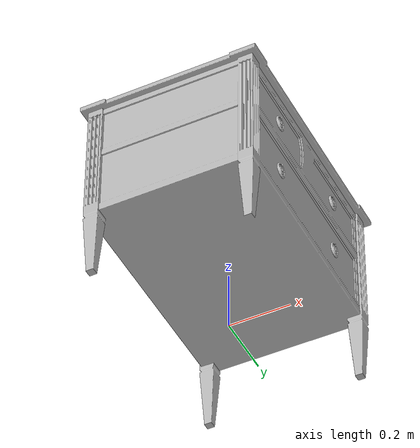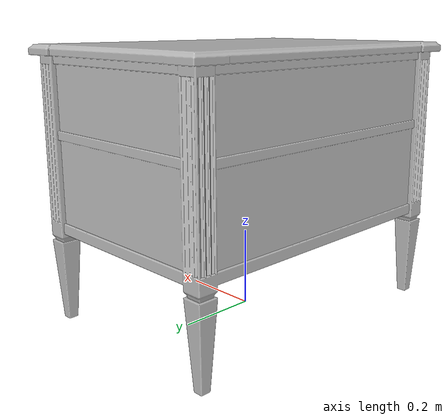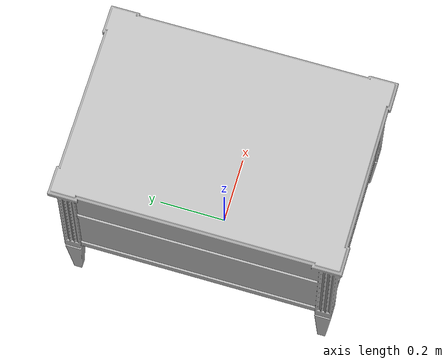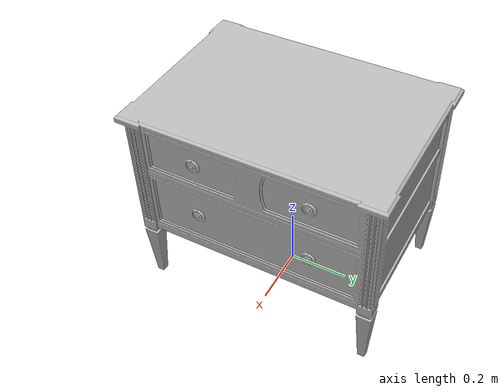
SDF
<?xml version='1.0'?>
<sdf version='1.4'>
  <model name='s__1307'>
    <pose>0 0 0 0 0 0</pose>
    <static>true</static>
    <link name='link'>
      <collision name='collision'>
        <pose>0 0 0 0 0 0</pose>
        <geometry>
          <box>
            <size>0.5904 0.84 2</size>
          </box>
        </geometry>
      </collision>
      <visual name='visual'>
        <pose>0 0 0 0 0 0</pose>
        <geometry>
          <mesh><uri>model://s__1307/s__1307.dae</uri></mesh>
        </geometry>
      </visual>
    </link>
  </model>
</sdf>
